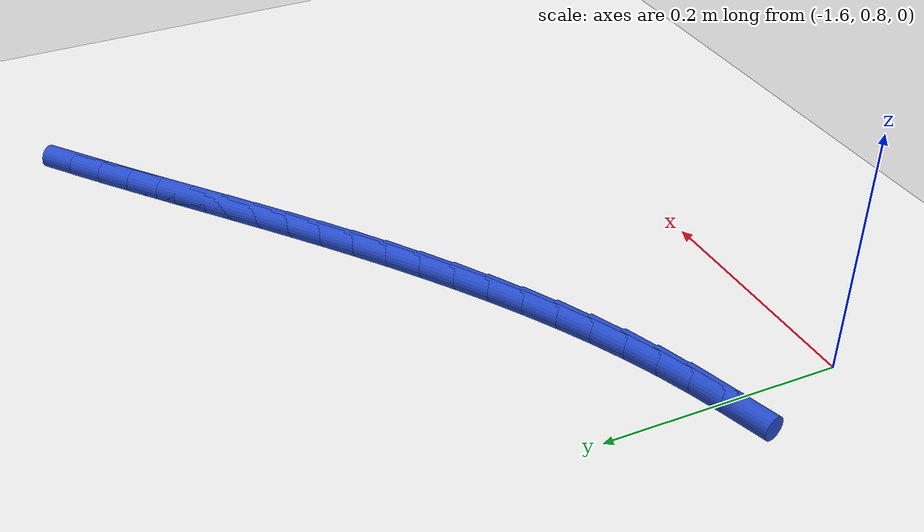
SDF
<sdf version="1.6">
 <world name="default">
  <model name="ground_plane">
   <static>1</static>
   <link name="link">
    <collision name="collision">
     <geometry><plane><normal>0 0 1</normal><size>100 100</size></plane></geometry>
     <surface><friction><ode><mu>100</mu><mu2>50</mu2></ode></friction></surface>
    </collision>
    <visual name="visual">
     <cast_shadows>0</cast_shadows>
     <geometry><plane><normal>0 0 1</normal><size>100 100</size></plane></geometry>
     <material>
      <script><uri>file://media/materials/scripts/gazebo.material</uri><name>Gazebo/WhiteGlow</name></script>
     </material>
    </visual>
   </link>
  </model>
  <model name="line">
   <link name="link_63">
    <pose>-1.1010233003190384 1.2331450217339932 0.01 0 1.57 0.6592204816249908</pose>
    <collision name="collision">
     <geometry><cylinder><radius>0.01</radius><length>0.08</length></cylinder></geometry>
    </collision>
    <visual name="visual">
     <material>
      <script><name>Gazebo/Blue</name><uri>file://media/materials/scripts/gazebo.material</uri></script>
     </material>
     <geometry><cylinder><radius>0.01</radius><length>0.08</length></cylinder></geometry>
    </visual>
   </link>
   <link name="link_64">
    <pose>-1.125252192341035 1.2143711044710437 0.01 0 1.57 0.6692647758033092</pose>
    <collision name="collision">
     <geometry><cylinder><radius>0.01</radius><length>0.08</length></cylinder></geometry>
    </collision>
    <visual name="visual">
     <material>
      <script><name>Gazebo/Blue</name><uri>file://media/materials/scripts/gazebo.material</uri></script>
     </material>
     <geometry><cylinder><radius>0.01</radius><length>0.08</length></cylinder></geometry>
    </visual>
   </link>
   <link name="link_65">
    <pose>-1.1492309271927637 1.1954025303305666 0.01 0 1.57 0.6762130828674482</pose>
    <collision name="collision">
     <geometry><cylinder><radius>0.01</radius><length>0.08</length></cylinder></geometry>
    </collision>
    <visual name="visual">
     <material>
      <script><name>Gazebo/Blue</name><uri>file://media/materials/scripts/gazebo.material</uri></script>
     </material>
     <geometry><cylinder><radius>0.01</radius><length>0.08</length></cylinder></geometry>
    </visual>
   </link>
   <link name="link_66">
    <pose>-1.1730405202113368 1.1762973043407834 0.01 0 1.57 0.6800315810141967</pose>
    <collision name="collision">
     <geometry><cylinder><radius>0.01</radius><length>0.08</length></cylinder></geometry>
    </collision>
    <visual name="visual">
     <material>
      <script><name>Gazebo/Blue</name><uri>file://media/materials/scripts/gazebo.material</uri></script>
     </material>
     <geometry><cylinder><radius>0.01</radius><length>0.08</length></cylinder></geometry>
    </visual>
   </link>
   <link name="link_67">
    <pose>-1.1967619867338675 1.1571134315299154 0.01 0 1.57 0.6807040863771685</pose>
    <collision name="collision">
     <geometry><cylinder><radius>0.01</radius><length>0.08</length></cylinder></geometry>
    </collision>
    <visual name="visual">
     <material>
      <script><name>Gazebo/Blue</name><uri>file://media/materials/scripts/gazebo.material</uri></script>
     </material>
     <geometry><cylinder><radius>0.01</radius><length>0.08</length></cylinder></geometry>
    </visual>
   </link>
   <link name="link_68">
    <pose>-1.220476342097468 1.1379089169261842 0.01 0 1.57 0.6782311331160261</pose>
    <collision name="collision">
     <geometry><cylinder><radius>0.01</radius><length>0.08</length></cylinder></geometry>
    </collision>
    <visual name="visual">
     <material>
      <script><name>Gazebo/Blue</name><uri>file://media/materials/scripts/gazebo.material</uri></script>
     </material>
     <geometry><cylinder><radius>0.01</radius><length>0.08</length></cylinder></geometry>
    </visual>
   </link>
   <link name="link_69">
    <pose>-1.2442646016392511 1.1187417655578116 0.01 0 1.57 0.6726297498894407</pose>
    <collision name="collision">
     <geometry><cylinder><radius>0.01</radius><length>0.08</length></cylinder></geometry>
    </collision>
    <visual name="visual">
     <material>
      <script><name>Gazebo/Blue</name><uri>file://media/materials/scripts/gazebo.material</uri></script>
     </material>
     <geometry><cylinder><radius>0.01</radius><length>0.08</length></cylinder></geometry>
    </visual>
   </link>
   <link name="link_70">
    <pose>-1.2682077806963286 1.0996699824530178 0.01 0 1.57 0.6639339400422635</pose>
    <collision name="collision">
     <geometry><cylinder><radius>0.01</radius><length>0.08</length></cylinder></geometry>
    </collision>
    <visual name="visual">
     <material>
      <script><name>Gazebo/Blue</name><uri>file://media/materials/scripts/gazebo.material</uri></script>
     </material>
     <geometry><cylinder><radius>0.01</radius><length>0.08</length></cylinder></geometry>
    </visual>
   </link>
   <link name="link_71">
    <pose>-1.2923868946058141 1.0807515726400252 0.01 0 1.57 0.6521958095400895</pose>
    <collision name="collision">
     <geometry><cylinder><radius>0.01</radius><length>0.08</length></cylinder></geometry>
    </collision>
    <visual name="visual">
     <material>
      <script><name>Gazebo/Blue</name><uri>file://media/materials/scripts/gazebo.material</uri></script>
     </material>
     <geometry><cylinder><radius>0.01</radius><length>0.08</length></cylinder></geometry>
    </visual>
   </link>
   <link name="link_72">
    <pose>-1.3168829587048196 1.062044541147055 0.01 0 1.57 0.6374872234319401</pose>
    <collision name="collision">
     <geometry><cylinder><radius>0.01</radius><length>0.08</length></cylinder></geometry>
    </collision>
    <visual name="visual">
     <material>
      <script><name>Gazebo/Blue</name><uri>file://media/materials/scripts/gazebo.material</uri></script>
     </material>
     <geometry><cylinder><radius>0.01</radius><length>0.08</length></cylinder></geometry>
    </visual>
   </link>
   <link name="link_73">
    <pose>-1.3417769883304573 1.0436068930023283 0.01 0 1.57 0.6199124391614036</pose>
    <collision name="collision">
     <geometry><cylinder><radius>0.01</radius><length>0.08</length></cylinder></geometry>
    </collision>
    <visual name="visual">
     <material>
      <script><name>Gazebo/Blue</name><uri>file://media/materials/scripts/gazebo.material</uri></script>
     </material>
     <geometry><cylinder><radius>0.01</radius><length>0.08</length></cylinder></geometry>
    </visual>
   </link>
   <link name="link_74">
    <pose>-1.3671399929859869 1.0255033680086507 0.01 0 1.57 0.599590277254207</pose>
    <collision name="collision">
     <geometry><cylinder><radius>0.01</radius><length>0.08</length></cylinder></geometry>
    </collision>
    <visual name="visual">
     <material>
      <script><name>Gazebo/Blue</name><uri>file://media/materials/scripts/gazebo.material</uri></script>
     </material>
     <geometry><cylinder><radius>0.01</radius><length>0.08</length></cylinder></geometry>
    </visual>
   </link>
   <link name="link_75">
    <pose>-1.3929520534080593 1.0078599087386668 0.01 0 1.57 0.5763632341942301</pose>
    <collision name="collision">
     <geometry><cylinder><radius>0.01</radius><length>0.08</length></cylinder></geometry>
    </collision>
    <visual name="visual">
     <material>
      <script><name>Gazebo/Blue</name><uri>file://media/materials/scripts/gazebo.material</uri></script>
     </material>
     <geometry><cylinder><radius>0.01</radius><length>0.08</length></cylinder></geometry>
    </visual>
   </link>
   <link name="link_76">
    <pose>-1.4191447521126115 0.9908351011797578 0.01 0 1.57 0.5499242664721627</pose>
    <collision name="collision">
     <geometry><cylinder><radius>0.01</radius><length>0.08</length></cylinder></geometry>
    </collision>
    <visual name="visual">
     <material>
      <script><name>Gazebo/Blue</name><uri>file://media/materials/scripts/gazebo.material</uri></script>
     </material>
     <geometry><cylinder><radius>0.01</radius><length>0.08</length></cylinder></geometry>
    </visual>
   </link>
   <link name="link_77">
    <pose>-1.4456492178749605 0.9745878367252141 0.01 0 1.57 0.5198961429945749</pose>
    <collision name="collision">
     <geometry><cylinder><radius>0.01</radius><length>0.08</length></cylinder></geometry>
    </collision>
    <visual name="visual">
     <material>
      <script><name>Gazebo/Blue</name><uri>file://media/materials/scripts/gazebo.material</uri></script>
     </material>
     <geometry><cylinder><radius>0.01</radius><length>0.08</length></cylinder></geometry>
    </visual>
   </link>
   <link name="link_78">
    <pose>-1.4723965794704248 0.9592770067683258 0.01 0 1.57 0.48582528519099527</pose>
    <collision name="collision">
     <geometry><cylinder><radius>0.01</radius><length>0.08</length></cylinder></geometry>
    </collision>
    <visual name="visual">
     <material>
      <script><name>Gazebo/Blue</name><uri>file://media/materials/scripts/gazebo.material</uri></script>
     </material>
     <geometry><cylinder><radius>0.01</radius><length>0.08</length></cylinder></geometry>
    </visual>
   </link>
   <link name="link_79">
    <pose>-1.499317965674323 0.9450615027023835 0.01 0 1.57 0.44717552632895435</pose>
    <collision name="collision">
     <geometry><cylinder><radius>0.01</radius><length>0.08</length></cylinder></geometry>
    </collision>
    <visual name="visual">
     <material>
      <script><name>Gazebo/Blue</name><uri>file://media/materials/scripts/gazebo.material</uri></script>
     </material>
     <geometry><cylinder><radius>0.01</radius><length>0.08</length></cylinder></geometry>
    </visual>
   </link>
   <link name="link_80">
    <pose>-1.526344505261973 0.9321002159206773 0.01 0 1.57 0.4033917658078241</pose>
    <collision name="collision">
     <geometry><cylinder><radius>0.01</radius><length>0.08</length></cylinder></geometry>
    </collision>
    <visual name="visual">
     <material>
      <script><name>Gazebo/Blue</name><uri>file://media/materials/scripts/gazebo.material</uri></script>
     </material>
     <geometry><cylinder><radius>0.01</radius><length>0.08</length></cylinder></geometry>
    </visual>
   </link>
   <link name="link_81">
    <pose>-1.553408407525714 0.9205494227196803 0.01 0 1.57 0.3582524620698807</pose>
    <collision name="collision">
     <geometry><cylinder><radius>0.01</radius><length>0.08</length></cylinder></geometry>
    </collision>
    <visual name="visual">
     <material>
      <script><name>Gazebo/Blue</name><uri>file://media/materials/scripts/gazebo.material</uri></script>
     </material>
     <geometry><cylinder><radius>0.01</radius><length>0.08</length></cylinder></geometry>
    </visual>
   </link>
   <link name="link_82">
    <pose>-1.5805091182459907 0.9104026718101244 0.01 0 1.57 0.31923538167151233</pose>
    <collision name="collision">
     <geometry><cylinder><radius>0.01</radius><length>0.08</length></cylinder></geometry>
    </collision>
    <visual name="visual">
     <material>
      <script><name>Gazebo/Blue</name><uri>file://media/materials/scripts/gazebo.material</uri></script>
     </material>
     <geometry><cylinder><radius>0.01</radius><length>0.08</length></cylinder></geometry>
    </visual>
   </link>
   <link name="link_83">
    <pose>-1.6077517069512126 0.9013978784217733 0.01 0 1.57 0.2880395448308474</pose>
    <collision name="collision">
     <geometry><cylinder><radius>0.01</radius><length>0.08</length></cylinder></geometry>
    </collision>
    <visual name="visual">
     <material>
      <script><name>Gazebo/Blue</name><uri>file://media/materials/scripts/gazebo.material</uri></script>
     </material>
     <geometry><cylinder><radius>0.01</radius><length>0.08</length></cylinder></geometry>
    </visual>
   </link>
  </model>
 </world>
</sdf>
